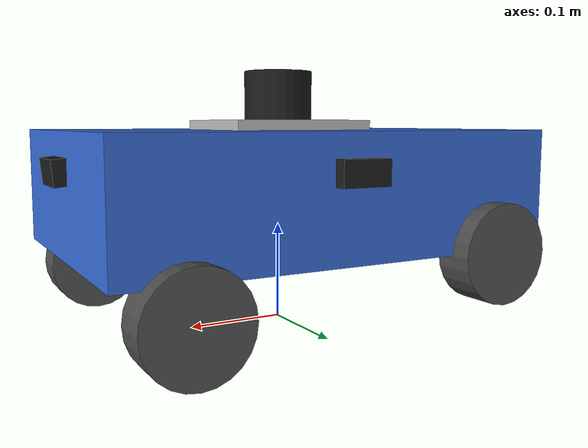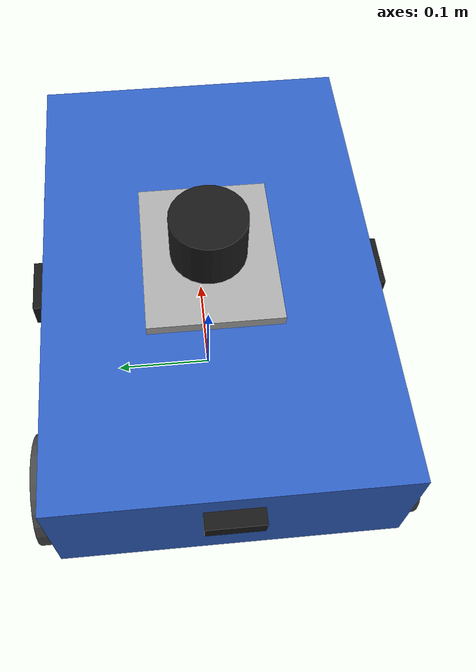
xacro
<?xml version="1.0"?>
<robot name="ackermann_robot" xmlns:xacro="http://www.ros.org/wiki/xacro">

  <!--                              机器人参数                                       -->

  <!-- 车体参数 (室内小型机器人) -->
  <xacro:property name="body_length" value="0.45" />   <!-- 车体长 45cm -->
  <xacro:property name="body_width"  value="0.30" />   <!-- 车体宽 30cm -->
  <xacro:property name="body_height" value="0.12" />   <!-- 车体高 12cm -->
  <xacro:property name="body_mass" value="5.0" />      <!-- 车体质量 5kg -->

  <!-- 轮子参数 -->
  <xacro:property name="wheel_radius" value="0.05" />  <!-- 轮子半径 5cm -->
  <xacro:property name="wheel_width"  value="0.04" />  <!-- 轮子宽度 4cm -->
  <xacro:property name="wheel_mass" value="0.5" />     <!-- 轮子质量 -->

  <!-- 轴距和轮距 -->
  <xacro:property name="wheelbase" value="0.32" />     <!-- 前后轴距 32cm -->
  <xacro:property name="track_width" value="0.26" />   <!-- 左右轮距 26cm -->

  <!-- 转向参数 -->
  <xacro:property name="steering_link_length" value="0.03" />
  <xacro:property name="max_steering_angle" value="0.5236" />

  <!-- 传感器参数 -->
  <xacro:property name="lidar_radius" value="0.035" />
  <xacro:property name="lidar_height" value="0.05" />
  <xacro:property name="camera_size" value="0.025" />

  <!-- 底盘离地高度 -->
  <xacro:property name="ground_clearance" value="0.03" />

  <!--                              颜色材质定义                                     -->
  <material name="white"><color rgba="1.0 1.0 1.0 1.0"/></material>
  <material name="black"><color rgba="0.1 0.1 0.1 1.0"/></material>
  <material name="dark_gray"><color rgba="0.3 0.3 0.3 1.0"/></material>
  <material name="light_gray"><color rgba="0.7 0.7 0.7 1.0"/></material>
  <material name="blue"><color rgba="0.2 0.4 0.8 1.0"/></material>
  <material name="red"><color rgba="0.8 0.2 0.2 1.0"/></material>
  <material name="orange"><color rgba="1.0 0.5 0.0 1.0"/></material>

  <!--                              惯性矩阵宏                                       -->
  <xacro:macro name="box_inertia" params="m x y z">
    <inertial>
      <mass value="${m}"/>
      <inertia ixx="${m*(y*y+z*z)/12}" ixy="0" ixz="0"
               iyy="${m*(x*x+z*z)/12}" iyz="0"
               izz="${m*(x*x+y*y)/12}"/>
    </inertial>
  </xacro:macro>

  <xacro:macro name="cylinder_inertia" params="m r h">
    <inertial>
      <mass value="${m}"/>
      <inertia ixx="${m*(3*r*r+h*h)/12}" ixy="0" ixz="0"
               iyy="${m*(3*r*r+h*h)/12}" iyz="0"
               izz="${m*r*r/2}"/>
    </inertial>
  </xacro:macro>

  <!--                              轮子宏定义                                       -->
  <xacro:macro name="wheel" params="name parent x y z">
    <link name="${name}_link">
      <visual>
        <geometry>
          <cylinder radius="${wheel_radius}" length="${wheel_width}"/>
        </geometry>
        <material name="dark_gray"/>
      </visual>
      <collision>
        <geometry>
          <cylinder radius="${wheel_radius}" length="${wheel_width}"/>
        </geometry>
      </collision>
      <xacro:cylinder_inertia m="${wheel_mass}" r="${wheel_radius}" h="${wheel_width}"/>
    </link>

    <joint name="${name}_joint" type="continuous">
      <parent link="${parent}"/>
      <child link="${name}_link"/>
      <origin xyz="${x} ${y} ${z}" rpy="${-pi/2} 0 0"/>
      <axis xyz="0 0 1"/>
      <dynamics damping="0.1" friction="0.1"/>
    </joint>

    <gazebo reference="${name}_link">
      <material>Gazebo/DarkGrey</material>
      <mu1>1.0</mu1>
      <mu2>1.0</mu2>
      <kp>1000000.0</kp>
      <kd>10.0</kd>
    </gazebo>
  </xacro:macro>

  <!--                              转向轮宏定义                                     -->
  <xacro:macro name="steering_wheel" params="name side x y">
    <!-- 转向连杆 -->
    <link name="${name}_steering_link">
      <visual>
        <origin xyz="0 0 ${-steering_link_length/2}" rpy="0 0 0"/>
        <geometry>
          <cylinder radius="0.01" length="${steering_link_length}"/>
        </geometry>
        <material name="light_gray"/>
      </visual>
      <inertial>
        <mass value="0.1"/>
        <inertia ixx="0.0001" ixy="0" ixz="0" iyy="0.0001" iyz="0" izz="0.0001"/>
      </inertial>
    </link>

    <!-- 转向关节 -->
    <joint name="${name}_steering_joint" type="revolute">
      <parent link="base_link"/>
      <child link="${name}_steering_link"/>
      <origin xyz="${x} ${y} 0" rpy="0 0 0"/>
      <axis xyz="0 0 1"/>
      <limit lower="${-max_steering_angle}" upper="${max_steering_angle}" effort="10" velocity="1.0"/>
      <dynamics damping="0.5" friction="0.1"/>
    </joint>

    <!-- 轮子 -->
    <link name="${name}_wheel_link">
      <visual>
        <geometry>
          <cylinder radius="${wheel_radius}" length="${wheel_width}"/>
        </geometry>
        <material name="dark_gray"/>
      </visual>
      <collision>
        <geometry>
          <cylinder radius="${wheel_radius}" length="${wheel_width}"/>
        </geometry>
      </collision>
      <xacro:cylinder_inertia m="${wheel_mass}" r="${wheel_radius}" h="${wheel_width}"/>
    </link>

    <!-- 轮子滚动关节 -->
    <joint name="${name}_wheel_joint" type="continuous">
      <parent link="${name}_steering_link"/>
      <child link="${name}_wheel_link"/>
      <origin xyz="0 0 ${-steering_link_length}" rpy="${-pi/2} 0 0"/>
      <axis xyz="0 0 1"/>
      <dynamics damping="0.1" friction="0.1"/>
    </joint>

    <gazebo reference="${name}_steering_link">
      <material>Gazebo/Grey</material>
    </gazebo>

    <gazebo reference="${name}_wheel_link">
      <material>Gazebo/DarkGrey</material>
      <mu1>1.0</mu1>
      <mu2>1.0</mu2>
      <kp>1000000.0</kp>
      <kd>10.0</kd>
    </gazebo>
  </xacro:macro>

  <!--                              base_footprint (地面参考点)                      -->
  <link name="base_footprint"/>

  <!--                              车体 base_link                                   -->
  <link name="base_link">
    <!-- 主车体 -->
    <visual>
      <origin xyz="0 0 ${body_height/2}" rpy="0 0 0"/>
      <geometry>
        <box size="${body_length} ${body_width} ${body_height}"/>
      </geometry>
      <material name="blue"/>
    </visual>
    <collision>
      <origin xyz="0 0 ${body_height/2}" rpy="0 0 0"/>
      <geometry>
        <box size="${body_length} ${body_width} ${body_height}"/>
      </geometry>
    </collision>
    <xacro:box_inertia m="${body_mass}" x="${body_length}" y="${body_width}" z="${body_height}"/>
  </link>

  <joint name="base_footprint_joint" type="fixed">
    <parent link="base_footprint"/>
    <child link="base_link"/>
    <origin xyz="0 0 ${wheel_radius + ground_clearance}" rpy="0 0 0"/>
  </joint>

  <gazebo reference="base_link">
    <material>Gazebo/Blue</material>
  </gazebo>

  <!--                              后驱动轮 (固定方向)                              -->
  <xacro:wheel name="rear_left_wheel" parent="base_link"
               x="${-wheelbase/2}" y="${track_width/2 + wheel_width/2}" z="0"/>
  <xacro:wheel name="rear_right_wheel" parent="base_link"
               x="${-wheelbase/2}" y="${-track_width/2 - wheel_width/2}" z="0"/>

  <!--                              前转向轮                                         -->
  <xacro:steering_wheel name="front_left" side="left"
                        x="${wheelbase/2}" y="${track_width/2 + wheel_width/2}"/>
  <xacro:steering_wheel name="front_right" side="right"
                        x="${wheelbase/2}" y="${-track_width/2 - wheel_width/2}"/>

  <!--                              传感器支架                                       -->
  <!-- 顶部传感器平台 -->
  <link name="sensor_platform_link">
    <visual>
      <geometry>
        <box size="0.15 0.12 0.01"/>
      </geometry>
      <material name="light_gray"/>
    </visual>
    <collision>
      <geometry>
        <box size="0.15 0.12 0.01"/>
      </geometry>
    </collision>
    <inertial>
      <mass value="0.2"/>
      <inertia ixx="0.0001" ixy="0" ixz="0" iyy="0.0001" iyz="0" izz="0.0001"/>
    </inertial>
  </link>

  <joint name="sensor_platform_joint" type="fixed">
    <parent link="base_link"/>
    <child link="sensor_platform_link"/>
    <origin xyz="0 0 ${body_height + 0.005}" rpy="0 0 0"/>
  </joint>

  <gazebo reference="sensor_platform_link">
    <material>Gazebo/Grey</material>
  </gazebo>

  <!--                              IMU 传感器                                       -->
  <link name="imu_link">
    <visual>
      <geometry>
        <box size="0.02 0.02 0.01"/>
      </geometry>
      <material name="red"/>
    </visual>
    <collision>
      <geometry>
        <box size="0.02 0.02 0.01"/>
      </geometry>
    </collision>
    <inertial>
      <mass value="0.01"/>
      <inertia ixx="0.000001" ixy="0" ixz="0" iyy="0.000001" iyz="0" izz="0.000001"/>
    </inertial>
  </link>

  <joint name="imu_joint" type="fixed">
    <parent link="base_link"/>
    <child link="imu_link"/>
    <origin xyz="0 0 ${body_height/2}" rpy="0 0 0"/>
  </joint>

  <gazebo reference="imu_link">
    <material>Gazebo/Red</material>
    <sensor name="imu_sensor" type="imu">
      <always_on>true</always_on>
      <update_rate>100</update_rate>
      <topic>imu</topic>
      <gz_frame_id>imu_link</gz_frame_id>
      <imu>
        <angular_velocity>
          <x><noise type="gaussian"><mean>0.0</mean><stddev>0.0002</stddev></noise></x>
          <y><noise type="gaussian"><mean>0.0</mean><stddev>0.0002</stddev></noise></y>
          <z><noise type="gaussian"><mean>0.0</mean><stddev>0.0002</stddev></noise></z>
        </angular_velocity>
        <linear_acceleration>
          <x><noise type="gaussian"><mean>0.0</mean><stddev>0.017</stddev></noise></x>
          <y><noise type="gaussian"><mean>0.0</mean><stddev>0.017</stddev></noise></y>
          <z><noise type="gaussian"><mean>0.0</mean><stddev>0.017</stddev></noise></z>
        </linear_acceleration>
      </imu>
    </sensor>
  </gazebo>

  <!--                              3D 激光雷达                                      -->
  <link name="lidar_link">
    <visual>
      <geometry>
        <cylinder radius="${lidar_radius}" length="${lidar_height}"/>
      </geometry>
      <material name="black"/>
    </visual>
    <collision>
      <geometry>
        <cylinder radius="${lidar_radius}" length="${lidar_height}"/>
      </geometry>
    </collision>
    <inertial>
      <mass value="0.2"/>
      <inertia ixx="0.0001" ixy="0" ixz="0" iyy="0.0001" iyz="0" izz="0.0001"/>
    </inertial>
  </link>

  <joint name="lidar_joint" type="fixed">
    <parent link="sensor_platform_link"/>
    <child link="lidar_link"/>
    <origin xyz="0 0 ${0.005 + lidar_height/2}" rpy="0 0 0"/>
  </joint>

  <gazebo reference="lidar_link">
    <material>Gazebo/Black</material>
    <!-- 3D LiDAR (16线) - 使用 gpu_lidar -->
    <sensor name="lidar_3d" type="gpu_lidar">
      <always_on>true</always_on>
      <update_rate>10</update_rate>
      <visualize>true</visualize>
      <topic>/lidar_3d/scan/points</topic>
      <gz_frame_id>lidar_link</gz_frame_id>
      <lidar>
        <scan>
          <horizontal>
            <samples>640</samples>
            <resolution>1</resolution>
            <min_angle>-3.14159</min_angle>
            <max_angle>3.14159</max_angle>
          </horizontal>
          <vertical>
            <samples>16</samples>
            <resolution>1</resolution>
            <min_angle>-0.261799</min_angle>
            <max_angle>0.261799</max_angle>
          </vertical>
        </scan>
        <range>
          <min>0.1</min>
          <max>30.0</max>
          <resolution>0.01</resolution>
        </range>
        <noise>
          <type>gaussian</type>
          <mean>0.0</mean>
          <stddev>0.01</stddev>
        </noise>
      </lidar>
    </sensor>
    <!-- 2D LiDAR (单线，用于 SLAM) -->
    <sensor name="lidar_2d" type="gpu_lidar">
      <always_on>true</always_on>
      <update_rate>10</update_rate>
      <visualize>false</visualize>
      <topic>/lidar_2d/scan</topic>
      <gz_frame_id>lidar_link</gz_frame_id>
      <lidar>
        <scan>
          <horizontal>
            <samples>1200</samples>
            <resolution>1</resolution>
            <min_angle>-3.14159</min_angle>
            <max_angle>3.14159</max_angle>
          </horizontal>
          <vertical>
            <samples>1</samples>
            <resolution>1</resolution>
            <min_angle>0</min_angle>
            <max_angle>0</max_angle>
          </vertical>
        </scan>
        <range>
          <min>0.1</min>
          <max>30.0</max>
          <resolution>0.01</resolution>
        </range>
        <noise>
          <type>gaussian</type>
          <mean>0.0</mean>
          <stddev>0.005</stddev>
        </noise>
      </lidar>
    </sensor>
  </gazebo>

  <!--                              前置深度相机                                     -->
  <link name="front_camera_link">
    <visual>
      <geometry>
        <box size="${camera_size} ${camera_size*2} ${camera_size}"/>
      </geometry>
      <material name="black"/>
    </visual>
    <collision>
      <geometry>
        <box size="${camera_size} ${camera_size*2} ${camera_size}"/>
      </geometry>
    </collision>
    <inertial>
      <mass value="0.05"/>
      <inertia ixx="0.00001" ixy="0" ixz="0" iyy="0.00001" iyz="0" izz="0.00001"/>
    </inertial>
  </link>

  <link name="front_camera_optical_link"/>

  <joint name="front_camera_joint" type="fixed">
    <parent link="base_link"/>
    <child link="front_camera_link"/>
    <origin xyz="${body_length/2} 0 ${body_height*0.7}" rpy="0 0.1 0"/>
  </joint>

  <joint name="front_camera_optical_joint" type="fixed">
    <parent link="front_camera_link"/>
    <child link="front_camera_optical_link"/>
    <origin xyz="0 0 0" rpy="${-pi/2} 0 ${-pi/2}"/>
  </joint>

  <gazebo reference="front_camera_link">
    <material>Gazebo/Black</material>
    <sensor name="front_camera_rgb" type="camera">
      <always_on>true</always_on>
      <update_rate>30</update_rate>
      <topic>front_camera/image_raw</topic>
      <gz_frame_id>front_camera_optical_link</gz_frame_id>
      <camera>
        <horizontal_fov>1.2</horizontal_fov>
        <image><width>640</width><height>480</height><format>R8G8B8</format></image>
        <clip><near>0.05</near><far>50</far></clip>
      </camera>
    </sensor>
    <sensor name="front_camera_depth" type="depth_camera">
      <always_on>true</always_on>
      <update_rate>30</update_rate>
      <topic>front_camera/depth</topic>
      <gz_frame_id>front_camera_optical_link</gz_frame_id>
      <camera>
        <horizontal_fov>1.2</horizontal_fov>
        <image><width>640</width><height>480</height><format>R_FLOAT32</format></image>
        <clip><near>0.05</near><far>8.0</far></clip>
      </camera>
    </sensor>
  </gazebo>

  <!--                              后置相机                                         -->
  <link name="rear_camera_link">
    <visual>
      <geometry>
        <box size="${camera_size} ${camera_size*2} ${camera_size}"/>
      </geometry>
      <material name="black"/>
    </visual>
    <collision>
      <geometry>
        <box size="${camera_size} ${camera_size*2} ${camera_size}"/>
      </geometry>
    </collision>
    <inertial>
      <mass value="0.05"/>
      <inertia ixx="0.00001" ixy="0" ixz="0" iyy="0.00001" iyz="0" izz="0.00001"/>
    </inertial>
  </link>

  <link name="rear_camera_optical_link"/>

  <joint name="rear_camera_joint" type="fixed">
    <parent link="base_link"/>
    <child link="rear_camera_link"/>
    <origin xyz="${-body_length/2} 0 ${body_height*0.7}" rpy="0 0.1 ${pi}"/>
  </joint>

  <joint name="rear_camera_optical_joint" type="fixed">
    <parent link="rear_camera_link"/>
    <child link="rear_camera_optical_link"/>
    <origin xyz="0 0 0" rpy="${-pi/2} 0 ${-pi/2}"/>
  </joint>

  <gazebo reference="rear_camera_link">
    <material>Gazebo/Black</material>
    <sensor name="rear_camera_rgb" type="camera">
      <always_on>true</always_on>
      <update_rate>30</update_rate>
      <topic>rear_camera/image_raw</topic>
      <gz_frame_id>rear_camera_optical_link</gz_frame_id>
      <camera>
        <horizontal_fov>1.2</horizontal_fov>
        <image><width>640</width><height>480</height><format>R8G8B8</format></image>
        <clip><near>0.05</near><far>50</far></clip>
      </camera>
    </sensor>
  </gazebo>

  <!--                              左侧相机                                         -->
  <link name="left_camera_link">
    <visual>
      <geometry>
        <box size="${camera_size} ${camera_size*2} ${camera_size}"/>
      </geometry>
      <material name="black"/>
    </visual>
    <collision>
      <geometry>
        <box size="${camera_size} ${camera_size*2} ${camera_size}"/>
      </geometry>
    </collision>
    <inertial>
      <mass value="0.05"/>
      <inertia ixx="0.00001" ixy="0" ixz="0" iyy="0.00001" iyz="0" izz="0.00001"/>
    </inertial>
  </link>

  <link name="left_camera_optical_link"/>

  <joint name="left_camera_joint" type="fixed">
    <parent link="base_link"/>
    <child link="left_camera_link"/>
    <origin xyz="0 ${body_width/2} ${body_height*0.7}" rpy="0 0 ${pi/2}"/>
  </joint>

  <joint name="left_camera_optical_joint" type="fixed">
    <parent link="left_camera_link"/>
    <child link="left_camera_optical_link"/>
    <origin xyz="0 0 0" rpy="${-pi/2} 0 ${-pi/2}"/>
  </joint>

  <gazebo reference="left_camera_link">
    <material>Gazebo/Black</material>
    <sensor name="left_camera_rgb" type="camera">
      <always_on>true</always_on>
      <update_rate>30</update_rate>
      <topic>left_camera/image_raw</topic>
      <gz_frame_id>left_camera_optical_link</gz_frame_id>
      <camera>
        <horizontal_fov>1.2</horizontal_fov>
        <image><width>640</width><height>480</height><format>R8G8B8</format></image>
        <clip><near>0.05</near><far>50</far></clip>
      </camera>
    </sensor>
  </gazebo>

  <!--                              右侧相机                                         -->
  <link name="right_camera_link">
    <visual>
      <geometry>
        <box size="${camera_size} ${camera_size*2} ${camera_size}"/>
      </geometry>
      <material name="black"/>
    </visual>
    <collision>
      <geometry>
        <box size="${camera_size} ${camera_size*2} ${camera_size}"/>
      </geometry>
    </collision>
    <inertial>
      <mass value="0.05"/>
      <inertia ixx="0.00001" ixy="0" ixz="0" iyy="0.00001" iyz="0" izz="0.00001"/>
    </inertial>
  </link>

  <link name="right_camera_optical_link"/>

  <joint name="right_camera_joint" type="fixed">
    <parent link="base_link"/>
    <child link="right_camera_link"/>
    <origin xyz="0 ${-body_width/2} ${body_height*0.7}" rpy="0 0 ${-pi/2}"/>
  </joint>

  <joint name="right_camera_optical_joint" type="fixed">
    <parent link="right_camera_link"/>
    <child link="right_camera_optical_link"/>
    <origin xyz="0 0 0" rpy="${-pi/2} 0 ${-pi/2}"/>
  </joint>

  <gazebo reference="right_camera_link">
    <material>Gazebo/Black</material>
    <sensor name="right_camera_rgb" type="camera">
      <always_on>true</always_on>
      <update_rate>30</update_rate>
      <topic>right_camera/image_raw</topic>
      <gz_frame_id>right_camera_optical_link</gz_frame_id>
      <camera>
        <horizontal_fov>1.2</horizontal_fov>
        <image><width>640</width><height>480</height><format>R8G8B8</format></image>
        <clip><near>0.05</near><far>50</far></clip>
      </camera>
    </sensor>
  </gazebo>

  <!--                              Gazebo 控制器插件                                -->

  <!-- ==================== 后轮驱动 (差速驱动) ==================== -->
  <!-- 使用 cmd_vel 控制速度 -->
  <gazebo>
    <plugin filename="gz-sim-diff-drive-system" name="gz::sim::systems::DiffDrive">
      <left_joint>rear_left_wheel_joint</left_joint>
      <right_joint>rear_right_wheel_joint</right_joint>
      <wheel_separation>${track_width}</wheel_separation>
      <wheel_radius>${wheel_radius}</wheel_radius>
      <topic>cmd_vel</topic>
    </plugin>
  </gazebo>

  <!-- ==================== 前轮转向控制 ==================== -->
  <!--
    控制话题: /steering_angle
    消息类型: std_msgs/Float64
    单位: rad (弧度)
    范围: -0.5236 ~ +0.5236 (±30°)
    正值 = 左转, 负值 = 右转
  -->

  <!-- 左前轮转向 -->
  <gazebo>
    <plugin filename="gz-sim-joint-position-controller-system" name="gz::sim::systems::JointPositionController">
      <joint_name>front_left_steering_joint</joint_name>
      <topic>steering_angle</topic>
      <p_gain>100.0</p_gain>
      <i_gain>0.1</i_gain>
      <d_gain>5.0</d_gain>
    </plugin>
  </gazebo>

  <!-- 右前轮转向 (使用相同话题，实现同步转向) -->
  <gazebo>
    <plugin filename="gz-sim-joint-position-controller-system" name="gz::sim::systems::JointPositionController">
      <joint_name>front_right_steering_joint</joint_name>
      <topic>steering_angle</topic>
      <p_gain>100.0</p_gain>
      <i_gain>0.1</i_gain>
      <d_gain>5.0</d_gain>
    </plugin>
  </gazebo>

  <!-- 关节状态发布器 -->
  <gazebo>
    <plugin filename="gz-sim-joint-state-publisher-system" name="gz::sim::systems::JointStatePublisher">
      <joint_name>front_left_steering_joint</joint_name>
      <joint_name>front_left_wheel_joint</joint_name>
      <joint_name>front_right_steering_joint</joint_name>
      <joint_name>front_right_wheel_joint</joint_name>
      <joint_name>rear_left_wheel_joint</joint_name>
      <joint_name>rear_right_wheel_joint</joint_name>
      <update_rate>50</update_rate>
    </plugin>
  </gazebo>

</robot>
